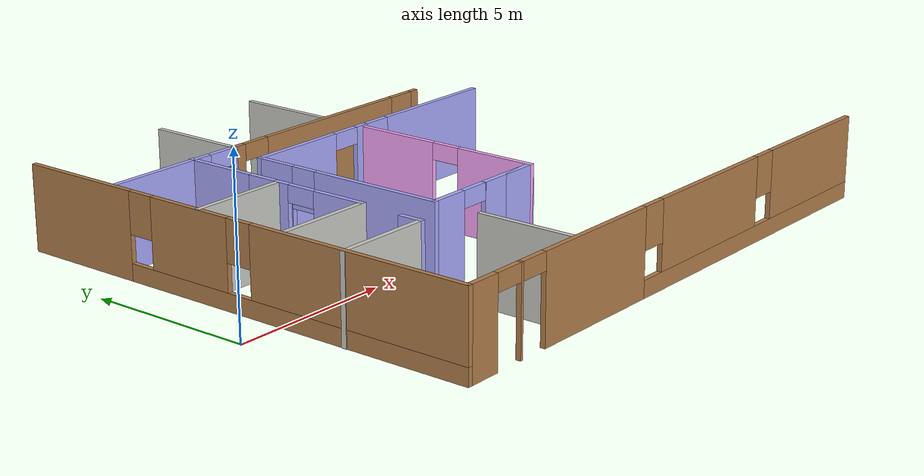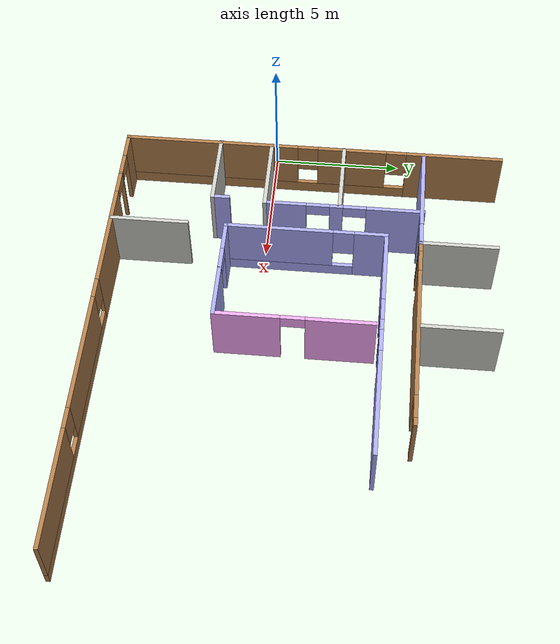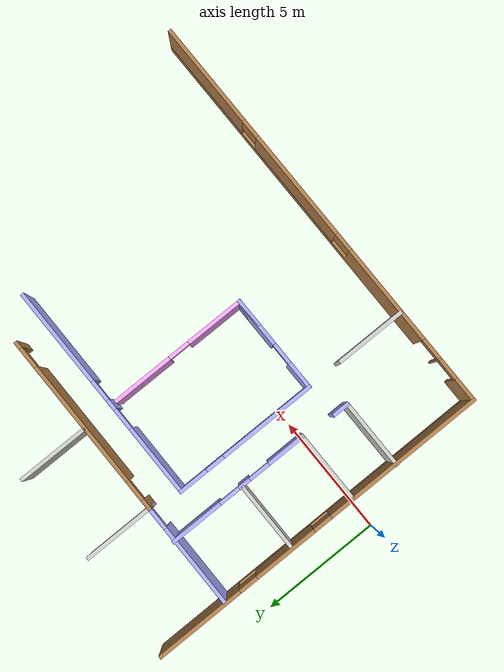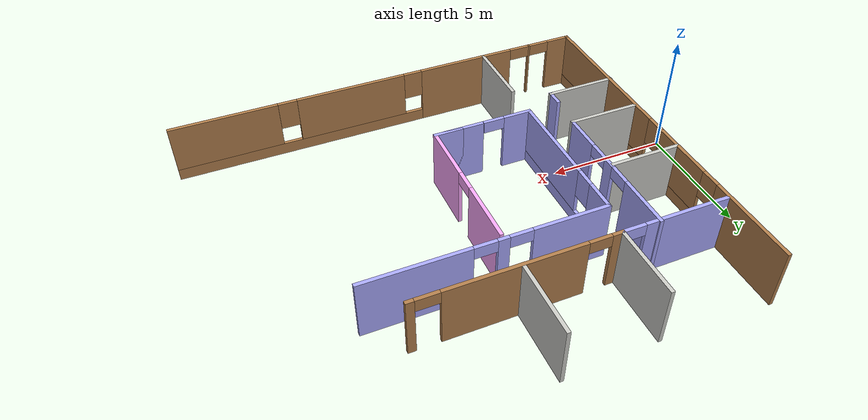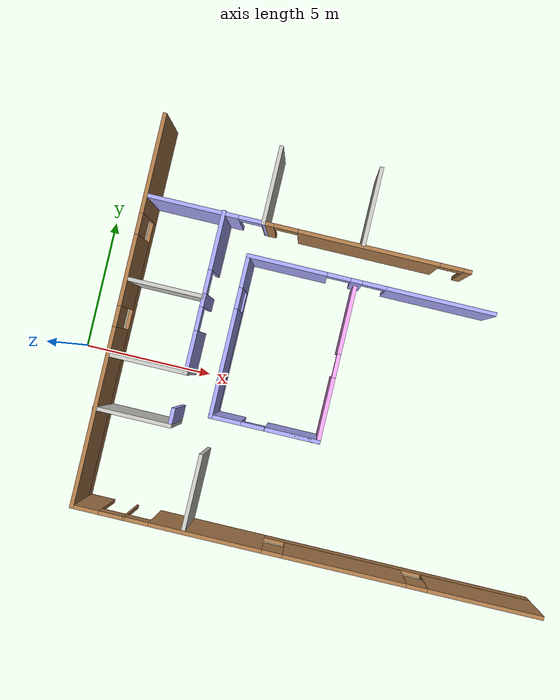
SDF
<sdf version="1.6">
 <model name="newOffice">
  <pose>10.3877 1.61821 0 0 -0 0</pose>
  <link name="Wall_0">
   <pose>-8.92098 -0.018654 0 0 0 -1.5708</pose>
   <visual name="Wall_0_Visual_0">
    <pose>-5.60223 0 1.25 0 -0 0</pose>
    <geometry><box><size>3.79554 0.15 2.5</size></box></geometry>
    <material>
     <script><uri>file://media/materials/scripts/gazebo.material</uri><name>Gazebo/Wood</name></script>
     <ambient>1 0.666667 1 1</ambient>
    </material>
    <meta><layer>0</layer></meta>
   </visual>
   <collision name="Wall_0_Collision_0">
    <geometry><box><size>3.79554 0.15 2.5</size></box></geometry>
    <pose>-5.60223 0 1.25 0 -0 0</pose>
   </collision>
   <visual name="Wall_0_Visual_1">
    <pose>1.89777 0 0.25 0 -0 0</pose>
    <geometry><box><size>11.2045 0.15 0.5</size></box></geometry>
    <material>
     <script><uri>file://media/materials/scripts/gazebo.material</uri><name>Gazebo/Wood</name></script>
     <ambient>1 0.666667 1 1</ambient>
    </material>
    <meta><layer>0</layer></meta>
   </visual>
   <collision name="Wall_0_Collision_1">
    <geometry><box><size>11.2045 0.15 0.5</size></box></geometry>
    <pose>1.89777 0 0.25 0 -0 0</pose>
   </collision>
   <visual name="Wall_0_Visual_2">
    <pose>-1.54552 0 1.5 0 -0 0</pose>
    <geometry><box><size>2.71788 0.15 2</size></box></geometry>
    <material>
     <script><uri>file://media/materials/scripts/gazebo.material</uri><name>Gazebo/Wood</name></script>
     <ambient>1 0.666667 1 1</ambient>
    </material>
    <meta><layer>0</layer></meta>
   </visual>
   <collision name="Wall_0_Collision_2">
    <geometry><box><size>2.71788 0.15 2</size></box></geometry>
    <pose>-1.54552 0 1.5 0 -0 0</pose>
   </collision>
   <visual name="Wall_0_Visual_3">
    <pose>4.05671 0 1.5 0 -0 0</pose>
    <geometry><box><size>6.88658 0.15 2</size></box></geometry>
    <material>
     <script><uri>file://media/materials/scripts/gazebo.material</uri><name>Gazebo/Wood</name></script>
     <ambient>1 0.666667 1 1</ambient>
    </material>
    <meta><layer>0</layer></meta>
   </visual>
   <collision name="Wall_0_Collision_3">
    <geometry><box><size>6.88658 0.15 2</size></box></geometry>
    <pose>4.05671 0 1.5 0 -0 0</pose>
   </collision>
   <visual name="Wall_0_Visual_4">
    <pose>-3.30446 0 1.9 0 -0 0</pose>
    <geometry><box><size>0.8 0.15 1.2</size></box></geometry>
    <material>
     <script><uri>file://media/materials/scripts/gazebo.material</uri><name>Gazebo/Wood</name></script>
     <ambient>1 0.666667 1 1</ambient>
    </material>
    <meta><layer>0</layer></meta>
   </visual>
   <collision name="Wall_0_Collision_4">
    <geometry><box><size>0.8 0.15 1.2</size></box></geometry>
    <pose>-3.30446 0 1.9 0 -0 0</pose>
   </collision>
   <visual name="Wall_0_Visual_5">
    <pose>0.213419 0 1.9 0 -0 0</pose>
    <geometry><box><size>0.8 0.15 1.2</size></box></geometry>
    <material>
     <script><uri>file://media/materials/scripts/gazebo.material</uri><name>Gazebo/Wood</name></script>
     <ambient>1 0.666667 1 1</ambient>
    </material>
    <meta><layer>0</layer></meta>
   </visual>
   <collision name="Wall_0_Collision_5">
    <geometry><box><size>0.8 0.15 1.2</size></box></geometry>
    <pose>0.213419 0 1.9 0 -0 0</pose>
   </collision>
  </link>
  <link name="Wall_1">
   <pose>0.004022 -7.44365 0 0 -0 0</pose>
   <visual name="Wall_1_Visual_0">
    <pose>-8.45097 0 1.25 0 -0 0</pose>
    <geometry><box><size>1.09805 0.15 2.5</size></box></geometry>
    <material>
     <script><uri>file://media/materials/scripts/gazebo.material</uri><name>Gazebo/Wood</name></script>
     <ambient>1 0.666667 1 1</ambient>
    </material>
    <meta><layer>0</layer></meta>
   </visual>
   <collision name="Wall_1_Collision_0">
    <geometry><box><size>1.09805 0.15 2.5</size></box></geometry>
    <pose>-8.45097 0 1.25 0 -0 0</pose>
   </collision>
   <visual name="Wall_1_Visual_1">
    <pose>-6.96251 0 1.25 0 -0 0</pose>
    <geometry><box><size>0.078887 0.15 2.5</size></box></geometry>
    <material>
     <script><uri>file://media/materials/scripts/gazebo.material</uri><name>Gazebo/Wood</name></script>
     <ambient>1 0.666667 1 1</ambient>
    </material>
    <meta><layer>0</layer></meta>
   </visual>
   <collision name="Wall_1_Collision_1">
    <geometry><box><size>0.078887 0.15 2.5</size></box></geometry>
    <pose>-6.96251 0 1.25 0 -0 0</pose>
   </collision>
   <visual name="Wall_1_Visual_2">
    <pose>-3.87848 0 1.25 0 -0 0</pose>
    <geometry><box><size>4.28916 0.15 2.5</size></box></geometry>
    <material>
     <script><uri>file://media/materials/scripts/gazebo.material</uri><name>Gazebo/Wood</name></script>
     <ambient>1 0.666667 1 1</ambient>
    </material>
    <meta><layer>0</layer></meta>
   </visual>
   <collision name="Wall_1_Collision_2">
    <geometry><box><size>4.28916 0.15 2.5</size></box></geometry>
    <pose>-3.87848 0 1.25 0 -0 0</pose>
   </collision>
   <visual name="Wall_1_Visual_3">
    <pose>3.63305 0 0.25 0 -0 0</pose>
    <geometry><box><size>10.7339 0.15 0.5</size></box></geometry>
    <material>
     <script><uri>file://media/materials/scripts/gazebo.material</uri><name>Gazebo/Wood</name></script>
     <ambient>1 0.666667 1 1</ambient>
    </material>
    <meta><layer>0</layer></meta>
   </visual>
   <collision name="Wall_1_Collision_3">
    <geometry><box><size>10.7339 0.15 0.5</size></box></geometry>
    <pose>3.63305 0 0.25 0 -0 0</pose>
   </collision>
   <visual name="Wall_1_Visual_4">
    <pose>1.41922 0 1.5 0 -0 0</pose>
    <geometry><box><size>4.70624 0.15 2</size></box></geometry>
    <material>
     <script><uri>file://media/materials/scripts/gazebo.material</uri><name>Gazebo/Wood</name></script>
     <ambient>1 0.666667 1 1</ambient>
    </material>
    <meta><layer>0</layer></meta>
   </visual>
   <collision name="Wall_1_Collision_4">
    <geometry><box><size>4.70624 0.15 2</size></box></geometry>
    <pose>1.41922 0 1.5 0 -0 0</pose>
   </collision>
   <visual name="Wall_1_Visual_5">
    <pose>6.78617 0 1.5 0 -0 0</pose>
    <geometry><box><size>4.42766 0.15 2</size></box></geometry>
    <material>
     <script><uri>file://media/materials/scripts/gazebo.material</uri><name>Gazebo/Wood</name></script>
     <ambient>1 0.666667 1 1</ambient>
    </material>
    <meta><layer>0</layer></meta>
   </visual>
   <collision name="Wall_1_Collision_5">
    <geometry><box><size>4.42766 0.15 2</size></box></geometry>
    <pose>6.78617 0 1.5 0 -0 0</pose>
   </collision>
   <visual name="Wall_1_Visual_6">
    <pose>-1.3339 0 1.9 0 -0 0</pose>
    <geometry><box><size>0.8 0.15 1.2</size></box></geometry>
    <material>
     <script><uri>file://media/materials/scripts/gazebo.material</uri><name>Gazebo/Wood</name></script>
     <ambient>1 0.666667 1 1</ambient>
    </material>
    <meta><layer>0</layer></meta>
   </visual>
   <collision name="Wall_1_Collision_6">
    <geometry><box><size>0.8 0.15 1.2</size></box></geometry>
    <pose>-1.3339 0 1.9 0 -0 0</pose>
   </collision>
   <visual name="Wall_1_Visual_7">
    <pose>4.17234 0 1.9 0 -0 0</pose>
    <geometry><box><size>0.8 0.15 1.2</size></box></geometry>
    <material>
     <script><uri>file://media/materials/scripts/gazebo.material</uri><name>Gazebo/Wood</name></script>
     <ambient>1 0.666667 1 1</ambient>
    </material>
    <meta><layer>0</layer></meta>
   </visual>
   <collision name="Wall_1_Collision_7">
    <geometry><box><size>0.8 0.15 1.2</size></box></geometry>
    <pose>4.17234 0 1.9 0 -0 0</pose>
   </collision>
   <visual name="Wall_1_Visual_8">
    <pose>-7.45195 0 2.25 0 -0 0</pose>
    <geometry><box><size>0.9 0.15 0.5</size></box></geometry>
    <material>
     <script><uri>file://media/materials/scripts/gazebo.material</uri><name>Gazebo/Wood</name></script>
     <ambient>1 0.666667 1 1</ambient>
    </material>
    <meta><layer>0</layer></meta>
   </visual>
   <collision name="Wall_1_Collision_8">
    <geometry><box><size>0.9 0.15 0.5</size></box></geometry>
    <pose>-7.45195 0 2.25 0 -0 0</pose>
   </collision>
   <visual name="Wall_1_Visual_9">
    <pose>-6.47306 0 2.25 0 -0 0</pose>
    <geometry><box><size>0.9 0.15 0.5</size></box></geometry>
    <material>
     <script><uri>file://media/materials/scripts/gazebo.material</uri><name>Gazebo/Wood</name></script>
     <ambient>1 0.666667 1 1</ambient>
    </material>
    <meta><layer>0</layer></meta>
   </visual>
   <collision name="Wall_1_Collision_9">
    <geometry><box><size>0.9 0.15 0.5</size></box></geometry>
    <pose>-6.47306 0 2.25 0 -0 0</pose>
   </collision>
  </link>
  <link name="Wall_11">
   <collision name="Wall_11_Collision">
    <geometry><box><size>3 0.15 2.5</size></box></geometry>
    <pose>0 0 1.25 0 -0 0</pose>
   </collision>
   <visual name="Wall_11_Visual">
    <pose>0 0 1.25 0 -0 0</pose>
    <geometry><box><size>3 0.15 2.5</size></box></geometry>
    <material>
     <script><uri>file://media/materials/scripts/gazebo.material</uri><name>Gazebo/CeilingTiled</name></script>
     <ambient>0.760784 0.662745 0.627451 1</ambient>
    </material>
    <meta><layer>0</layer></meta>
   </visual>
   <pose>-0.660428 5.89112 0 0 -0 1.5708</pose>
  </link>
  <link name="Wall_20">
   <pose>-5.96415 1.3696 0 0 0 -1.5708</pose>
   <visual name="Wall_20_Visual_0">
    <pose>-1.99614 0 1.25 0 -0 0</pose>
    <geometry><box><size>2.25772 0.15 2.5</size></box></geometry>
    <material>
     <script><uri>file://media/materials/scripts/gazebo.material</uri><name>Gazebo/Grey</name></script>
     <ambient>0.666667 0.666667 1 1</ambient>
    </material>
    <meta><layer>0</layer></meta>
   </visual>
   <collision name="Wall_20_Collision_0">
    <geometry><box><size>2.25772 0.15 2.5</size></box></geometry>
    <pose>-1.99614 0 1.25 0 -0 0</pose>
   </collision>
   <visual name="Wall_20_Visual_1">
    <pose>0.286292 0 1.25 0 -0 0</pose>
    <geometry><box><size>0.507151 0.15 2.5</size></box></geometry>
    <material>
     <script><uri>file://media/materials/scripts/gazebo.material</uri><name>Gazebo/Grey</name></script>
     <ambient>0.666667 0.666667 1 1</ambient>
    </material>
    <meta><layer>0</layer></meta>
   </visual>
   <collision name="Wall_20_Collision_1">
    <geometry><box><size>0.507151 0.15 2.5</size></box></geometry>
    <pose>0.286292 0 1.25 0 -0 0</pose>
   </collision>
   <visual name="Wall_20_Visual_2">
    <pose>2.28243 0 1.25 0 -0 0</pose>
    <geometry><box><size>1.68513 0.15 2.5</size></box></geometry>
    <material>
     <script><uri>file://media/materials/scripts/gazebo.material</uri><name>Gazebo/Grey</name></script>
     <ambient>0.666667 0.666667 1 1</ambient>
    </material>
    <meta><layer>0</layer></meta>
   </visual>
   <collision name="Wall_20_Collision_2">
    <geometry><box><size>1.68513 0.15 2.5</size></box></geometry>
    <pose>2.28243 0 1.25 0 -0 0</pose>
   </collision>
   <visual name="Wall_20_Visual_3">
    <pose>-0.417283 0 2.25 0 -0 0</pose>
    <geometry><box><size>0.9 0.15 0.5</size></box></geometry>
    <material>
     <script><uri>file://media/materials/scripts/gazebo.material</uri><name>Gazebo/Grey</name></script>
     <ambient>0.666667 0.666667 1 1</ambient>
    </material>
    <meta><layer>0</layer></meta>
   </visual>
   <collision name="Wall_20_Collision_3">
    <geometry><box><size>0.9 0.15 0.5</size></box></geometry>
    <pose>-0.417283 0 2.25 0 -0 0</pose>
   </collision>
   <visual name="Wall_20_Visual_4">
    <pose>0.989867 0 2.25 0 -0 0</pose>
    <geometry><box><size>0.9 0.15 0.5</size></box></geometry>
    <material>
     <script><uri>file://media/materials/scripts/gazebo.material</uri><name>Gazebo/Grey</name></script>
     <ambient>0.666667 0.666667 1 1</ambient>
    </material>
    <meta><layer>0</layer></meta>
   </visual>
   <collision name="Wall_20_Collision_4">
    <geometry><box><size>0.9 0.15 0.5</size></box></geometry>
    <pose>0.989867 0 2.25 0 -0 0</pose>
   </collision>
  </link>
  <link name="Wall_21">
   <collision name="Wall_21_Collision">
    <geometry><box><size>3 0.15 2.5</size></box></geometry>
    <pose>0 0 1.25 0 -0 0</pose>
   </collision>
   <visual name="Wall_21_Visual">
    <pose>0 0 1.25 0 -0 0</pose>
    <geometry><box><size>3 0.15 2.5</size></box></geometry>
    <material>
     <script><uri>file://media/materials/scripts/gazebo.material</uri><name>Gazebo/CeilingTiled</name></script>
     <ambient>0.760784 0.662745 0.627451 1</ambient>
    </material>
    <meta><layer>0</layer></meta>
   </visual>
   <pose>-7.38915 -1.6804 0 0 -0 3.14159</pose>
  </link>
  <link name="Wall_23">
   <collision name="Wall_23_Collision">
    <geometry><box><size>3 0.15 2.5</size></box></geometry>
    <pose>0 0 1.25 0 -0 0</pose>
   </collision>
   <visual name="Wall_23_Visual">
    <pose>0 0 1.25 0 -0 0</pose>
    <geometry><box><size>3 0.15 2.5</size></box></geometry>
    <material>
     <script><uri>file://media/materials/scripts/gazebo.material</uri><name>Gazebo/CeilingTiled</name></script>
     <ambient>0.760784 0.662745 0.627451 1</ambient>
    </material>
    <meta><layer>0</layer></meta>
   </visual>
   <pose>-7.47016 1.20945 0 0 -0 0</pose>
  </link>
  <link name="Wall_25">
   <collision name="Wall_25_Collision">
    <geometry><box><size>3 0.15 2.5</size></box></geometry>
    <pose>0 0 1.25 0 -0 0</pose>
   </collision>
   <visual name="Wall_25_Visual">
    <pose>0 0 1.25 0 -0 0</pose>
    <geometry><box><size>3 0.15 2.5</size></box></geometry>
    <material>
     <script><uri>file://media/materials/scripts/gazebo.material</uri><name>Gazebo/CeilingTiled</name></script>
     <ambient>0.760784 0.662745 0.627451 1</ambient>
    </material>
    <meta><layer>0</layer></meta>
   </visual>
   <pose>-7.51668 -3.72208 0 0 -0 0</pose>
  </link>
  <link name="Wall_26">
   <collision name="Wall_26_Collision">
    <geometry><box><size>0.75 0.15 2.5</size></box></geometry>
    <pose>0 0 1.25 0 -0 0</pose>
   </collision>
   <visual name="Wall_26_Visual">
    <pose>0 0 1.25 0 -0 0</pose>
    <geometry><box><size>0.75 0.15 2.5</size></box></geometry>
    <material>
     <script><uri>file://media/materials/scripts/gazebo.material</uri><name>Gazebo/Grey</name></script>
     <ambient>0.666667 0.666667 1 1</ambient>
    </material>
    <meta><layer>0</layer></meta>
   </visual>
   <pose>-6.09169 -3.42209 0 0 -0 1.5708</pose>
  </link>
  <link name="Wall_28">
   <pose>-4.70801 0.020406 0 0 0 -1.5708</pose>
   <visual name="Wall_28_Visual_0">
    <pose>-2.47749 0 1.25 0 -0 0</pose>
    <geometry><box><size>1.29502 0.15 2.5</size></box></geometry>
    <material>
     <script><uri>file://media/materials/scripts/gazebo.material</uri><name>Gazebo/Grey</name></script>
     <ambient>0.666667 0.666667 1 1</ambient>
    </material>
    <meta><layer>0</layer></meta>
   </visual>
   <collision name="Wall_28_Collision_0">
    <geometry><box><size>1.29502 0.15 2.5</size></box></geometry>
    <pose>-2.47749 0 1.25 0 -0 0</pose>
   </collision>
   <visual name="Wall_28_Visual_1">
    <pose>0.647508 0 0.25 0 -0 0</pose>
    <geometry><box><size>4.95498 0.15 0.5</size></box></geometry>
    <material>
     <script><uri>file://media/materials/scripts/gazebo.material</uri><name>Gazebo/Grey</name></script>
     <ambient>0.666667 0.666667 1 1</ambient>
    </material>
    <meta><layer>0</layer></meta>
   </visual>
   <collision name="Wall_28_Collision_1">
    <geometry><box><size>4.95498 0.15 0.5</size></box></geometry>
    <pose>0.647508 0 0.25 0 -0 0</pose>
   </collision>
   <visual name="Wall_28_Visual_2">
    <pose>1.04751 0 1.5 0 -0 0</pose>
    <geometry><box><size>4.15498 0.15 2</size></box></geometry>
    <material>
     <script><uri>file://media/materials/scripts/gazebo.material</uri><name>Gazebo/Grey</name></script>
     <ambient>0.666667 0.666667 1 1</ambient>
    </material>
    <meta><layer>0</layer></meta>
   </visual>
   <collision name="Wall_28_Collision_2">
    <geometry><box><size>4.15498 0.15 2</size></box></geometry>
    <pose>1.04751 0 1.5 0 -0 0</pose>
   </collision>
   <visual name="Wall_28_Visual_3">
    <pose>-1.42998 0 1.9 0 -0 0</pose>
    <geometry><box><size>0.8 0.15 1.2</size></box></geometry>
    <material>
     <script><uri>file://media/materials/scripts/gazebo.material</uri><name>Gazebo/Grey</name></script>
     <ambient>0.666667 0.666667 1 1</ambient>
    </material>
    <meta><layer>0</layer></meta>
   </visual>
   <collision name="Wall_28_Collision_3">
    <geometry><box><size>0.8 0.15 1.2</size></box></geometry>
    <pose>-1.42998 0 1.9 0 -0 0</pose>
   </collision>
  </link>
  <link name="Wall_29">
   <pose>-2.65801 -3.02959 0 0 -0 0</pose>
   <visual name="Wall_29_Visual_0">
    <pose>-1.51055 0 1.25 0 -0 0</pose>
    <geometry><box><size>1.2289 0.15 2.5</size></box></geometry>
    <material>
     <script><uri>file://media/materials/scripts/gazebo.material</uri><name>Gazebo/Grey</name></script>
     <ambient>0.666667 0.666667 1 1</ambient>
    </material>
    <meta><layer>0</layer></meta>
   </visual>
   <collision name="Wall_29_Collision_0">
    <geometry><box><size>1.2289 0.15 2.5</size></box></geometry>
    <pose>-1.51055 0 1.25 0 -0 0</pose>
   </collision>
   <visual name="Wall_29_Visual_1">
    <pose>1.06445 0 1.25 0 -0 0</pose>
    <geometry><box><size>2.1211 0.15 2.5</size></box></geometry>
    <material>
     <script><uri>file://media/materials/scripts/gazebo.material</uri><name>Gazebo/Grey</name></script>
     <ambient>0.666667 0.666667 1 1</ambient>
    </material>
    <meta><layer>0</layer></meta>
   </visual>
   <collision name="Wall_29_Collision_1">
    <geometry><box><size>2.1211 0.15 2.5</size></box></geometry>
    <pose>1.06445 0 1.25 0 -0 0</pose>
   </collision>
   <visual name="Wall_29_Visual_2">
    <pose>1.50801 0 1.25 0 -0 0</pose>
    <geometry><box><size>1.23399 0.15 2.5</size></box></geometry>
    <material>
     <script><uri>file://media/materials/scripts/gazebo.material</uri><name>Gazebo/Grey</name></script>
     <ambient>0.666667 0.666667 1 1</ambient>
    </material>
    <meta><layer>0</layer></meta>
   </visual>
   <collision name="Wall_29_Collision_2">
    <geometry><box><size>1.23399 0.15 2.5</size></box></geometry>
    <pose>1.50801 0 1.25 0 -0 0</pose>
   </collision>
   <visual name="Wall_29_Visual_3">
    <pose>-0.452546 0 2.25 0 -0 0</pose>
    <geometry><box><size>0.887117 0.15 0.5</size></box></geometry>
    <material>
     <script><uri>file://media/materials/scripts/gazebo.material</uri><name>Gazebo/Grey</name></script>
     <ambient>0.666667 0.666667 1 1</ambient>
    </material>
    <meta><layer>0</layer></meta>
   </visual>
   <collision name="Wall_29_Collision_3">
    <geometry><box><size>0.887117 0.15 0.5</size></box></geometry>
    <pose>-0.452546 0 2.25 0 -0 0</pose>
   </collision>
  </link>
  <link name="Wall_30">
   <pose>-0.60801 -0.104594 0 0 -0 1.5708</pose>
   <visual name="Wall_30_Visual_0">
    <pose>-1.74285 0 1.25 0 -0 0</pose>
    <geometry><box><size>2.51429 0.15 2.5</size></box></geometry>
    <material>
     <script><uri>file://media/materials/scripts/gazebo.material</uri><name>Gazebo/Grey</name></script>
     <ambient>1 0.666667 1 1</ambient>
    </material>
    <meta><layer>0</layer></meta>
   </visual>
   <collision name="Wall_30_Collision_0">
    <geometry><box><size>2.51429 0.15 2.5</size></box></geometry>
    <pose>-1.74285 0 1.25 0 -0 0</pose>
   </collision>
   <visual name="Wall_30_Visual_1">
    <pose>1.70715 0 1.25 0 -0 0</pose>
    <geometry><box><size>2.58571 0.15 2.5</size></box></geometry>
    <material>
     <script><uri>file://media/materials/scripts/gazebo.material</uri><name>Gazebo/Grey</name></script>
     <ambient>1 0.666667 1 1</ambient>
    </material>
    <meta><layer>0</layer></meta>
   </visual>
   <collision name="Wall_30_Collision_1">
    <geometry><box><size>2.58571 0.15 2.5</size></box></geometry>
    <pose>1.70715 0 1.25 0 -0 0</pose>
   </collision>
   <visual name="Wall_30_Visual_2">
    <pose>-0.035708 0 2.25 0 -0 0</pose>
    <geometry><box><size>0.9 0.15 0.5</size></box></geometry>
    <material>
     <script><uri>file://media/materials/scripts/gazebo.material</uri><name>Gazebo/Grey</name></script>
     <ambient>1 0.666667 1 1</ambient>
    </material>
    <meta><layer>0</layer></meta>
   </visual>
   <collision name="Wall_30_Collision_2">
    <geometry><box><size>0.9 0.15 0.5</size></box></geometry>
    <pose>-0.035708 0 2.25 0 -0 0</pose>
   </collision>
  </link>
  <link name="Wall_32">
   <pose>-0.033009 3.07041 0 0 -0 0</pose>
   <visual name="Wall_32_Visual_0">
    <pose>-3.21785 0 1.25 0 -0 0</pose>
    <geometry><box><size>3.06431 0.15 2.5</size></box></geometry>
    <material>
     <script><uri>file://media/materials/scripts/gazebo.material</uri><name>Gazebo/Grey</name></script>
     <ambient>0.666667 0.666667 1 1</ambient>
    </material>
    <meta><layer>0</layer></meta>
   </visual>
   <collision name="Wall_32_Collision_0">
    <geometry><box><size>3.06431 0.15 2.5</size></box></geometry>
    <pose>-3.21785 0 1.25 0 -0 0</pose>
   </collision>
   <visual name="Wall_32_Visual_1">
    <pose>-0.562706 0 1.25 0 -0 0</pose>
    <geometry><box><size>0.44597 0.15 2.5</size></box></geometry>
    <material>
     <script><uri>file://media/materials/scripts/gazebo.material</uri><name>Gazebo/Grey</name></script>
     <ambient>0.666667 0.666667 1 1</ambient>
    </material>
    <meta><layer>0</layer></meta>
   </visual>
   <collision name="Wall_32_Collision_1">
    <geometry><box><size>0.44597 0.15 2.5</size></box></geometry>
    <pose>-0.562706 0 1.25 0 -0 0</pose>
   </collision>
   <visual name="Wall_32_Visual_2">
    <pose>2.65514 0 1.25 0 -0 0</pose>
    <geometry><box><size>4.18972 0.15 2.5</size></box></geometry>
    <material>
     <script><uri>file://media/materials/scripts/gazebo.material</uri><name>Gazebo/Grey</name></script>
     <ambient>0.666667 0.666667 1 1</ambient>
    </material>
    <meta><layer>0</layer></meta>
   </visual>
   <collision name="Wall_32_Collision_2">
    <geometry><box><size>4.18972 0.15 2.5</size></box></geometry>
    <pose>2.65514 0 1.25 0 -0 0</pose>
   </collision>
   <visual name="Wall_32_Visual_3">
    <pose>-1.23569 0 2.25 0 -0 0</pose>
    <geometry><box><size>0.9 0.15 0.5</size></box></geometry>
    <material>
     <script><uri>file://media/materials/scripts/gazebo.material</uri><name>Gazebo/Grey</name></script>
     <ambient>0.666667 0.666667 1 1</ambient>
    </material>
    <meta><layer>0</layer></meta>
   </visual>
   <collision name="Wall_32_Collision_3">
    <geometry><box><size>0.9 0.15 0.5</size></box></geometry>
    <pose>-1.23569 0 2.25 0 -0 0</pose>
   </collision>
   <visual name="Wall_32_Visual_4">
    <pose>0.110279 0 2.25 0 -0 0</pose>
    <geometry><box><size>0.9 0.15 0.5</size></box></geometry>
    <material>
     <script><uri>file://media/materials/scripts/gazebo.material</uri><name>Gazebo/Grey</name></script>
     <ambient>0.666667 0.666667 1 1</ambient>
    </material>
    <meta><layer>0</layer></meta>
   </visual>
   <collision name="Wall_32_Collision_4">
    <geometry><box><size>0.9 0.15 0.5</size></box></geometry>
    <pose>0.110279 0 2.25 0 -0 0</pose>
   </collision>
  </link>
  <link name="Wall_45">
   <collision name="Wall_45_Collision">
    <geometry><box><size>3 0.15 2.5</size></box></geometry>
    <pose>0 0 1.25 0 -0 0</pose>
   </collision>
   <visual name="Wall_45_Visual">
    <pose>0 0 1.25 0 -0 0</pose>
    <geometry><box><size>3 0.15 2.5</size></box></geometry>
    <material>
     <script><uri>file://media/materials/scripts/gazebo.material</uri><name>Gazebo/CeilingTiled</name></script>
     <ambient>0.760784 0.662745 0.627451 1</ambient>
    </material>
    <meta><layer>0</layer></meta>
   </visual>
   <pose>-4.70801 -5.97248 0 0 -0 1.5708</pose>
  </link>
  <link name="Wall_5">
   <pose>-6.62711 4.37308 0 0 -0 0</pose>
   <visual name="Wall_5_Visual_0">
    <pose>-0.506758 0 1.25 0 -0 0</pose>
    <geometry><box><size>3.48649 0.15 2.5</size></box></geometry>
    <material>
     <script><uri>file://media/materials/scripts/gazebo.material</uri><name>Gazebo/Grey</name></script>
     <ambient>0.666667 0.666667 1 1</ambient>
    </material>
    <meta><layer>0</layer></meta>
   </visual>
   <collision name="Wall_5_Collision_0">
    <geometry><box><size>3.48649 0.15 2.5</size></box></geometry>
    <pose>-0.506758 0 1.25 0 -0 0</pose>
   </collision>
   <visual name="Wall_5_Visual_1">
    <pose>2.19324 0 1.25 0 -0 0</pose>
    <geometry><box><size>0.113515 0.15 2.5</size></box></geometry>
    <material>
     <script><uri>file://media/materials/scripts/gazebo.material</uri><name>Gazebo/Grey</name></script>
     <ambient>0.666667 0.666667 1 1</ambient>
    </material>
    <meta><layer>0</layer></meta>
   </visual>
   <collision name="Wall_5_Collision_1">
    <geometry><box><size>0.113515 0.15 2.5</size></box></geometry>
    <pose>2.19324 0 1.25 0 -0 0</pose>
   </collision>
   <visual name="Wall_5_Visual_2">
    <pose>1.68649 0 2.25 0 -0 0</pose>
    <geometry><box><size>0.9 0.15 0.5</size></box></geometry>
    <material>
     <script><uri>file://media/materials/scripts/gazebo.material</uri><name>Gazebo/Grey</name></script>
     <ambient>0.666667 0.666667 1 1</ambient>
    </material>
    <meta><layer>0</layer></meta>
   </visual>
   <collision name="Wall_5_Collision_2">
    <geometry><box><size>0.9 0.15 0.5</size></box></geometry>
    <pose>1.68649 0 2.25 0 -0 0</pose>
   </collision>
  </link>
  <link name="Wall_6">
   <collision name="Wall_6_Collision">
    <geometry><box><size>3 0.15 2.5</size></box></geometry>
    <pose>0 0 1.25 0 -0 0</pose>
   </collision>
   <visual name="Wall_6_Visual">
    <pose>0 0 1.25 0 -0 0</pose>
    <geometry><box><size>3 0.15 2.5</size></box></geometry>
    <material>
     <script><uri>file://media/materials/scripts/gazebo.material</uri><name>Gazebo/CeilingTiled</name></script>
     <ambient>0.760784 0.662745 0.627451 1</ambient>
    </material>
    <meta><layer>0</layer></meta>
   </visual>
   <pose>-4.45211 5.79808 0 0 -0 1.5708</pose>
  </link>
  <link name="Wall_8">
   <pose>-0.527113 4.37308 0 0 -0 0</pose>
   <visual name="Wall_8_Visual_0">
    <pose>-3.75822 0 1.25 0 -0 0</pose>
    <geometry><box><size>0.483556 0.15 2.5</size></box></geometry>
    <material>
     <script><uri>file://media/materials/scripts/gazebo.material</uri><name>Gazebo/Wood</name></script>
     <ambient>0.666667 0.666667 1 1</ambient>
    </material>
    <meta><layer>0</layer></meta>
   </visual>
   <collision name="Wall_8_Collision_0">
    <geometry><box><size>0.483556 0.15 2.5</size></box></geometry>
    <pose>-3.75822 0 1.25 0 -0 0</pose>
   </collision>
   <visual name="Wall_8_Visual_1">
    <pose>0.08435 0 1.25 0 -0 0</pose>
    <geometry><box><size>5.40159 0.15 2.5</size></box></geometry>
    <material>
     <script><uri>file://media/materials/scripts/gazebo.material</uri><name>Gazebo/Wood</name></script>
     <ambient>0.666667 0.666667 1 1</ambient>
    </material>
    <meta><layer>0</layer></meta>
   </visual>
   <collision name="Wall_8_Collision_1">
    <geometry><box><size>5.40159 0.15 2.5</size></box></geometry>
    <pose>0.08435 0 1.25 0 -0 0</pose>
   </collision>
   <visual name="Wall_8_Visual_2">
    <pose>3.84257 0 1.25 0 -0 0</pose>
    <geometry><box><size>0.314856 0.15 2.5</size></box></geometry>
    <material>
     <script><uri>file://media/materials/scripts/gazebo.material</uri><name>Gazebo/Wood</name></script>
     <ambient>0.666667 0.666667 1 1</ambient>
    </material>
    <meta><layer>0</layer></meta>
   </visual>
   <collision name="Wall_8_Collision_2">
    <geometry><box><size>0.314856 0.15 2.5</size></box></geometry>
    <pose>3.84257 0 1.25 0 -0 0</pose>
   </collision>
   <visual name="Wall_8_Visual_3">
    <pose>-3.06644 0 2.25 0 -0 0</pose>
    <geometry><box><size>0.9 0.15 0.5</size></box></geometry>
    <material>
     <script><uri>file://media/materials/scripts/gazebo.material</uri><name>Gazebo/Wood</name></script>
     <ambient>0.666667 0.666667 1 1</ambient>
    </material>
    <meta><layer>0</layer></meta>
   </visual>
   <collision name="Wall_8_Collision_3">
    <geometry><box><size>0.9 0.15 0.5</size></box></geometry>
    <pose>-3.06644 0 2.25 0 -0 0</pose>
   </collision>
   <visual name="Wall_8_Visual_4">
    <pose>3.23514 0 2.25 0 -0 0</pose>
    <geometry><box><size>0.9 0.15 0.5</size></box></geometry>
    <material>
     <script><uri>file://media/materials/scripts/gazebo.material</uri><name>Gazebo/Wood</name></script>
     <ambient>0.666667 0.666667 1 1</ambient>
    </material>
    <meta><layer>0</layer></meta>
   </visual>
   <collision name="Wall_8_Collision_4">
    <geometry><box><size>0.9 0.15 0.5</size></box></geometry>
    <pose>3.23514 0 2.25 0 -0 0</pose>
   </collision>
  </link>
  <static>1</static>
 </model>
</sdf>
